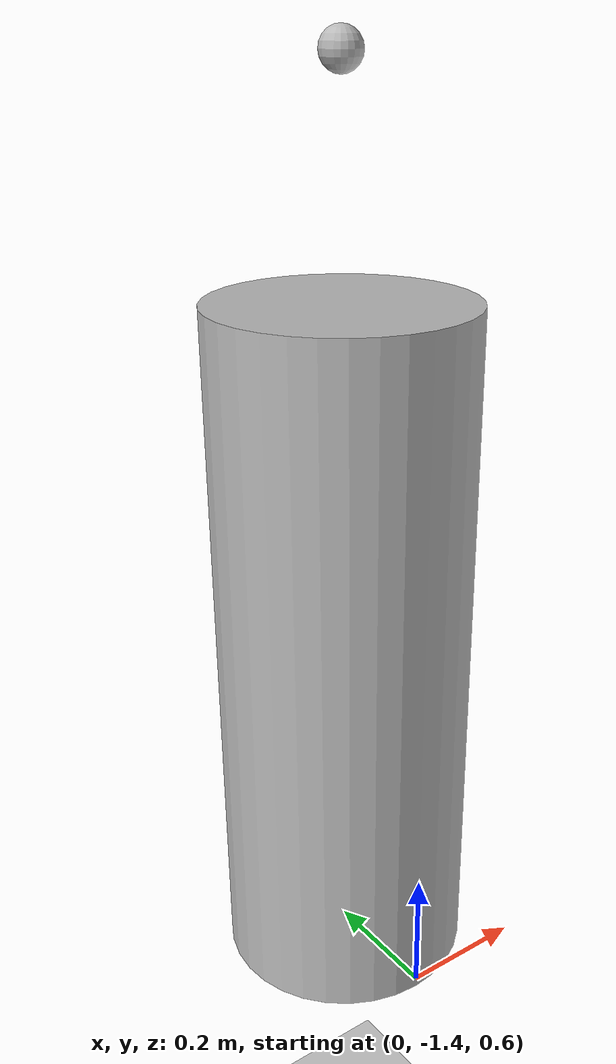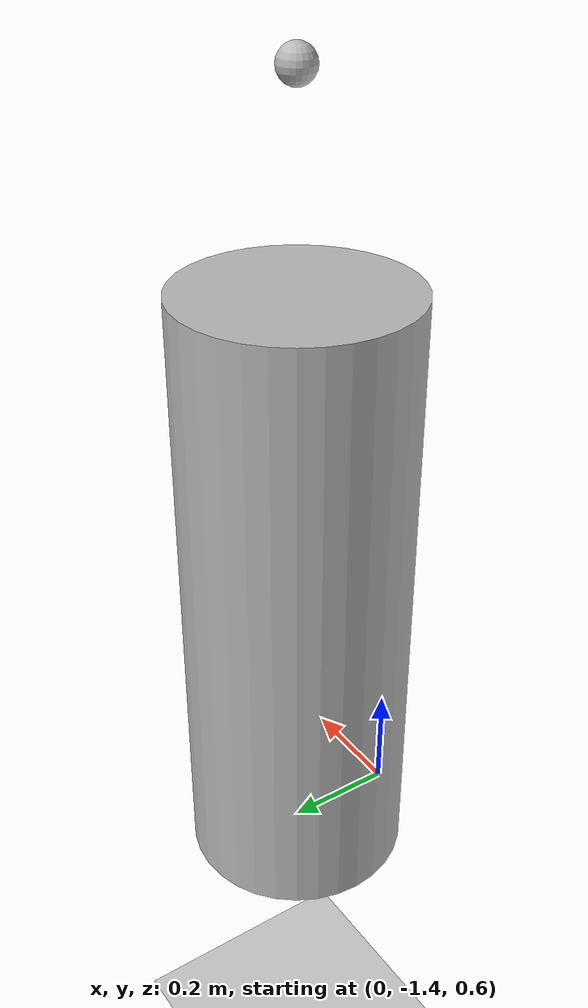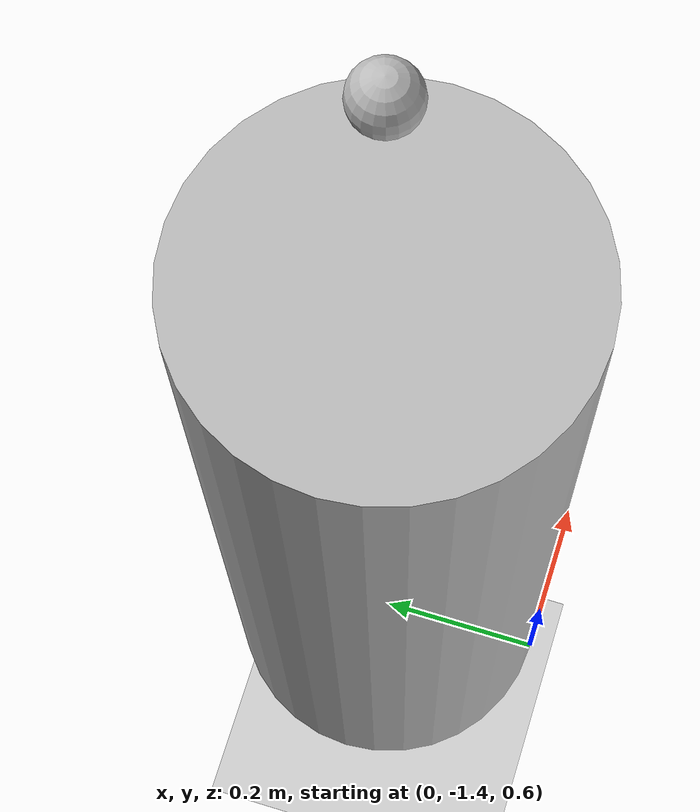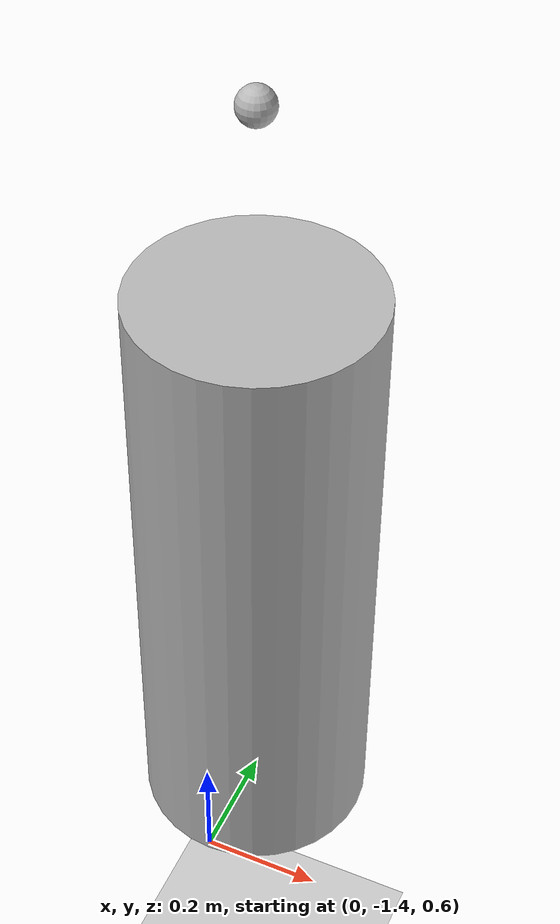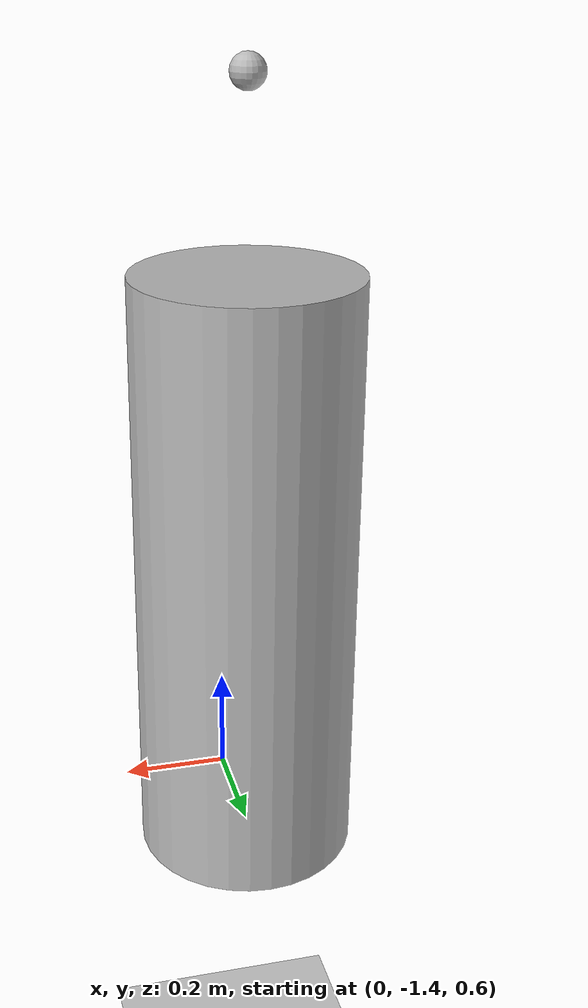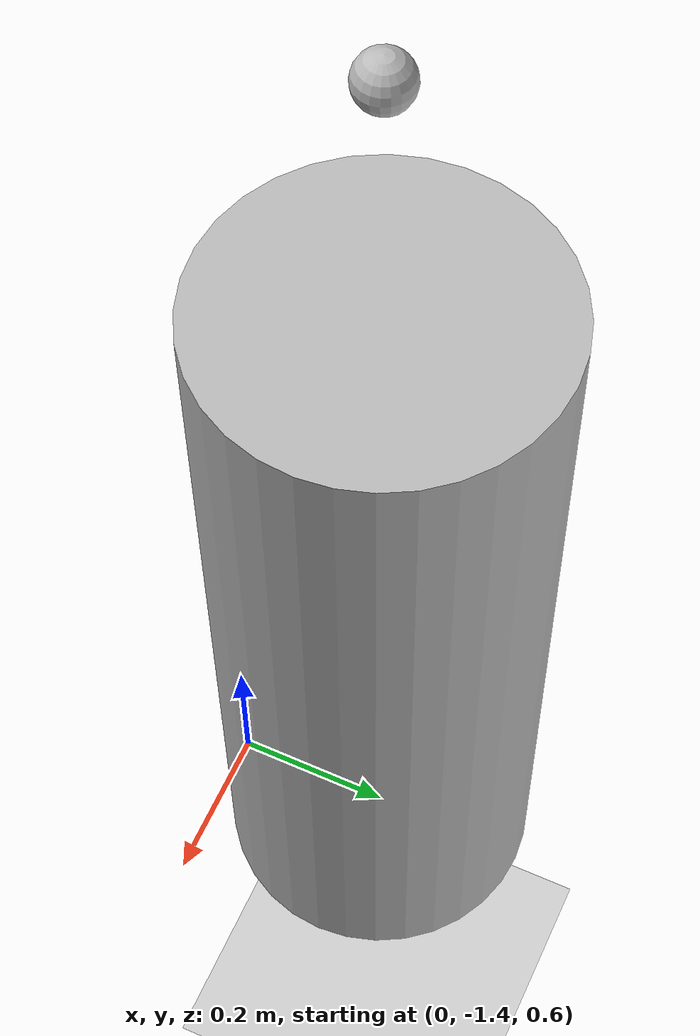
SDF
<?xml version="1.0" ?>

<sdf version="1.6">
  <world name="default">

    <include>
      <uri>model://sun</uri>
    </include>
    <include>
      <uri>model://ground_plane</uri>
    </include>

    <include>
      <uri>model://bag</uri>
      <pose>0 -1.2 2.0 0 0 0</pose>
    </include>

  </world>
</sdf>

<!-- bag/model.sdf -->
<sdf version='1.6'>
  <model name='bag'>

    <link name='base_link'>

      <visual name='base_link_visual'>
        <pose frame=''>0 0 0 0 -0 0</pose>
        <geometry>
          <sphere>
            <radius>0.03</radius>
          </sphere>
        </geometry>
      </visual>

    </link>

    <joint name="base_link_joint" type="fixed">
      <parent>world</parent>
      <child>base_link</child>
      <pose>0 0 2.0 0 0 0</pose>
    </joint>

    <joint name="bag_joint" type="ball">
      <parent>base_link</parent>
      <child>bag_link</child>
      <pose>0 0 0 0 0 0</pose>
    </joint>

    <link name='bag_link'>
      <visual name='bag_link_visual'>
        <pose frame=''>0 0 0 0 -0 0</pose>
        <geometry>
          <mesh>
            <uri>model://bag/meshes/bag.dae</uri>
            <scale>1.0 1.0 1.0</scale>
          </mesh>
        </geometry>
      </visual>
      <collision name='bag_link_collision'>
        <pose frame=''>0 0 0 0 -0 0</pose>
        <geometry>
          <mesh>
            <uri>model://bag/meshes/bag.stl</uri>
            <scale>1.0 1.0 1.0</scale>
          </mesh>
        </geometry>
     </collision>
     <inertial>
          <pose frame=''>0 0 -2.0 0 0 0</pose>
          <mass>10.0</mass>
          <inertia>
            <ixx>3.9583333333333335</ixx>
            <ixy>0.000000</ixy>
            <ixz>0.000000</ixz>
            <iyy>3.9583333333333335</iyy>
            <iyz>0.000000</iyz>
            <izz>1.25</izz>
          </inertia>
      </inertial>
    </link>

    <static>0</static>
    <allow_auto_disable>1</allow_auto_disable>

  </model>
</sdf>
